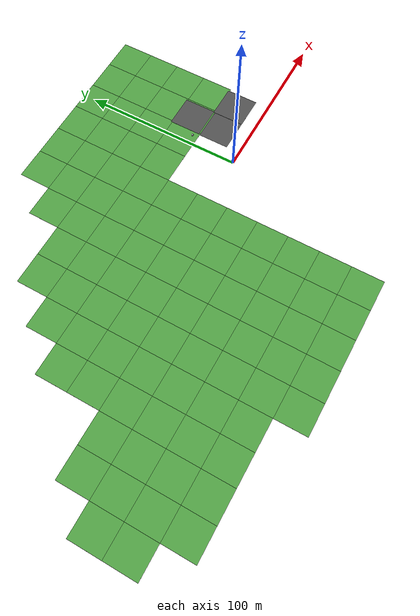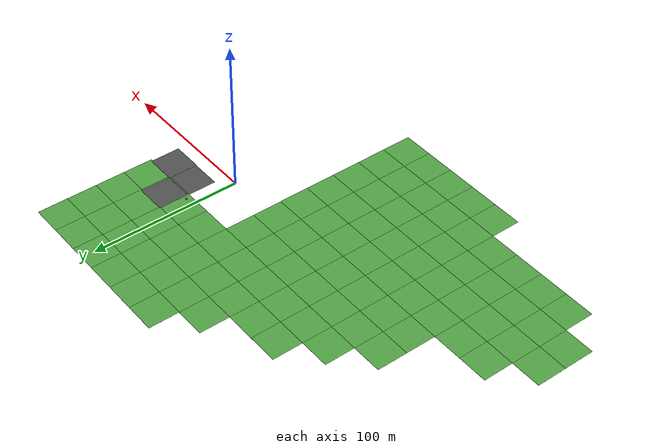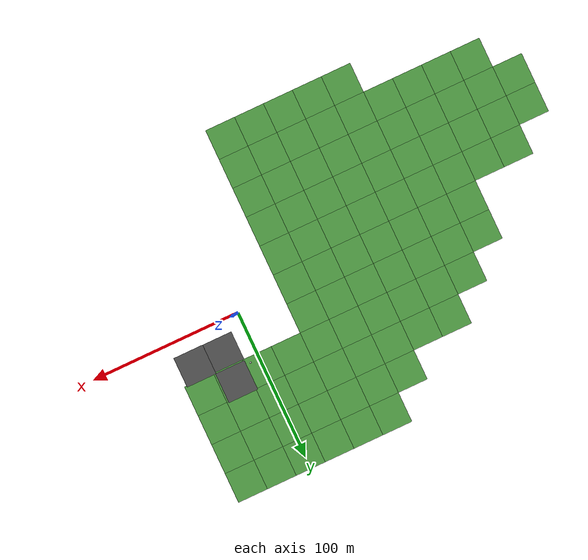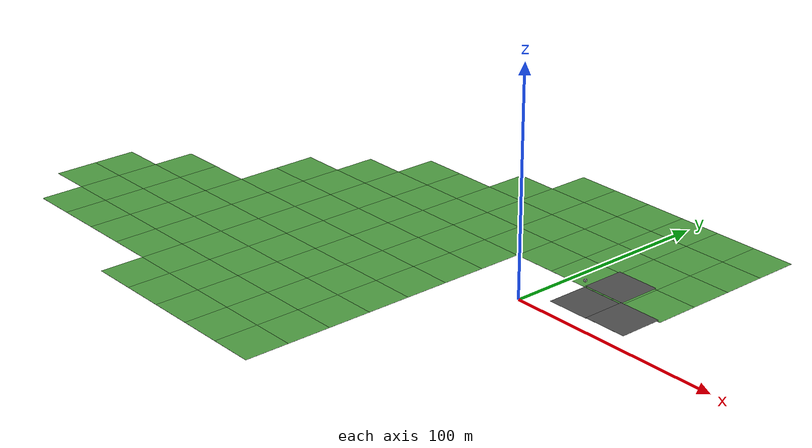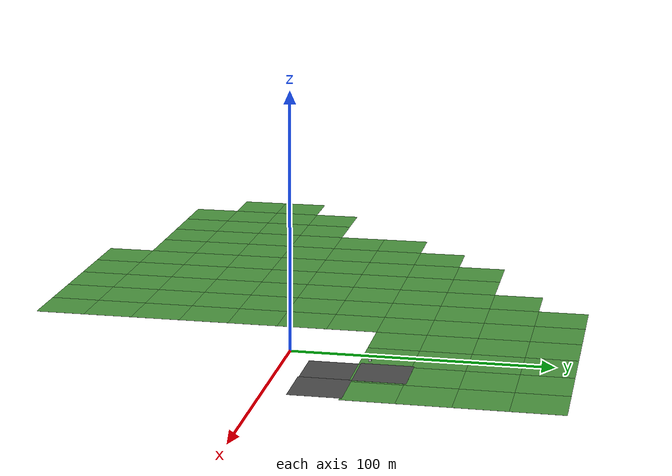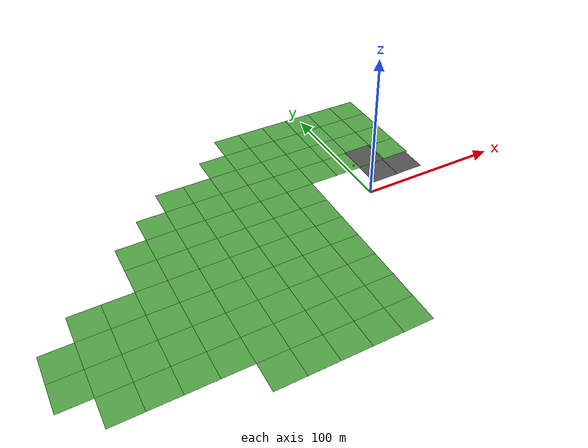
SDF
<sdf version="1.6">
 <world name="default">
  <model name="labrob_ground_7">
   <static>1</static>
   <link name="link">
    <collision name="collision">
     <geometry><plane><normal>0 0 1</normal><size>20 20</size></plane></geometry>
     <surface><friction><ode><mu>100</mu><mu2>50</mu2></ode></friction></surface>
    </collision>
    <visual name="visual">
     <cast_shadows>0</cast_shadows>
     <geometry><plane><normal>0 0 1</normal><size>20 20</size></plane></geometry>
     <material>
      <script>
       <uri>model://labrob_ground/materials/scripts/</uri>
       <uri>model://labrob_ground/materials/textures/</uri>
       <name>Labrob/AsphaltGround</name>
      </script>
     </material>
    </visual>
   </link>
   <pose>18.7361 18.9694 0 0 -0 0</pose>
  </model>
  <model name="labrob_ground_10">
   <static>1</static>
   <link name="link">
    <collision name="collision">
     <geometry><plane><normal>0 0 1</normal><size>20 20</size></plane></geometry>
     <surface><friction><ode><mu>100</mu><mu2>50</mu2></ode></friction></surface>
    </collision>
    <visual name="visual">
     <cast_shadows>0</cast_shadows>
     <geometry><plane><normal>0 0 1</normal><size>20 20</size></plane></geometry>
     <material>
      <script>
       <uri>model://labrob_ground/materials/scripts/</uri>
       <uri>model://labrob_ground/materials/textures/</uri>
       <name>Labrob/AsphaltGround</name>
      </script>
     </material>
    </visual>
   </link>
   <pose>18.9313 38.763 0 0 -0 0</pose>
  </model>
  <model name="labrob_ground_11">
   <static>1</static>
   <link name="link">
    <collision name="collision">
     <geometry><plane><normal>0 0 1</normal><size>20 20</size></plane></geometry>
     <surface><friction><ode><mu>100</mu><mu2>50</mu2></ode></friction></surface>
    </collision>
    <visual name="visual">
     <cast_shadows>0</cast_shadows>
     <geometry><plane><normal>0 0 1</normal><size>20 20</size></plane></geometry>
     <material>
      <script>
       <uri>model://labrob_ground/materials/scripts/</uri>
       <uri>model://labrob_ground/materials/textures/</uri>
       <name>Labrob/AsphaltGround</name>
      </script>
     </material>
    </visual>
   </link>
   <pose>38.4891 18.8271 0 0 -0 0</pose>
  </model>
  <model name="grass_plane_0">
   <static>1</static>
   <link name="link">
    <collision name="collision">
     <geometry><plane><normal>0 0 1</normal><size>500 500</size></plane></geometry>
     <surface><friction><ode><mu>0.5</mu><mu2>0.5</mu2></ode></friction></surface>
    </collision>
    <visual name="visual_0">
     <pose>-40 -40 0 0 -0 0</pose>
     <cast_shadows>0</cast_shadows>
     <geometry><plane><normal>0 0 1</normal><size>20 20</size></plane></geometry>
     <material>
      <script>
       <uri>model://grass_plane/materials/scripts</uri>
       <uri>model://grass_plane/materials/textures</uri>
       <name>vrc/grass</name>
      </script>
     </material>
    </visual>
    <visual name="visual_1">
     <pose>-20 -40 0 0 -0 0</pose>
     <cast_shadows>0</cast_shadows>
     <geometry><plane><normal>0 0 1</normal><size>20 20</size></plane></geometry>
     <material>
      <script>
       <uri>model://grass_plane/materials/scripts</uri>
       <uri>model://grass_plane/materials/textures</uri>
       <name>vrc/grass</name>
      </script>
     </material>
    </visual>
    <visual name="visual_2">
     <pose>0 -40 0 0 -0 0</pose>
     <cast_shadows>0</cast_shadows>
     <geometry><plane><normal>0 0 1</normal><size>20 20</size></plane></geometry>
     <material>
      <script>
       <uri>model://grass_plane/materials/scripts</uri>
       <uri>model://grass_plane/materials/textures</uri>
       <name>vrc/grass</name>
      </script>
     </material>
    </visual>
    <visual name="visual_3">
     <pose>20 -40 0 0 -0 0</pose>
     <cast_shadows>0</cast_shadows>
     <geometry><plane><normal>0 0 1</normal><size>20 20</size></plane></geometry>
     <material>
      <script>
       <uri>model://grass_plane/materials/scripts</uri>
       <uri>model://grass_plane/materials/textures</uri>
       <name>vrc/grass</name>
      </script>
     </material>
    </visual>
    <visual name="visual_4">
     <pose>40 -40 0 0 -0 0</pose>
     <cast_shadows>0</cast_shadows>
     <geometry><plane><normal>0 0 1</normal><size>20 20</size></plane></geometry>
     <material>
      <script>
       <uri>model://grass_plane/materials/scripts</uri>
       <uri>model://grass_plane/materials/textures</uri>
       <name>vrc/grass</name>
      </script>
     </material>
    </visual>
    <visual name="visual_5">
     <pose>60 -40 0 0 -0 0</pose>
     <cast_shadows>0</cast_shadows>
     <geometry><plane><normal>0 0 1</normal><size>20 20</size></plane></geometry>
     <material>
      <script>
       <uri>model://grass_plane/materials/scripts</uri>
       <uri>model://grass_plane/materials/textures</uri>
       <name>vrc/grass</name>
      </script>
     </material>
    </visual>
    <visual name="visual_6">
     <pose>-40 -20 0 0 -0 0</pose>
     <cast_shadows>0</cast_shadows>
     <geometry><plane><normal>0 0 1</normal><size>20 20</size></plane></geometry>
     <material>
      <script>
       <uri>model://grass_plane/materials/scripts</uri>
       <uri>model://grass_plane/materials/textures</uri>
       <name>vrc/grass</name>
      </script>
     </material>
    </visual>
    <visual name="visual_7">
     <pose>-20 -20 0 0 -0 0</pose>
     <cast_shadows>0</cast_shadows>
     <geometry><plane><normal>0 0 1</normal><size>20 20</size></plane></geometry>
     <material>
      <script>
       <uri>model://grass_plane/materials/scripts</uri>
       <uri>model://grass_plane/materials/textures</uri>
       <name>vrc/grass</name>
      </script>
     </material>
    </visual>
    <visual name="visual_8">
     <pose>0 -20 0 0 -0 0</pose>
     <cast_shadows>0</cast_shadows>
     <geometry><plane><normal>0 0 1</normal><size>20 20</size></plane></geometry>
     <material>
      <script>
       <uri>model://grass_plane/materials/scripts</uri>
       <uri>model://grass_plane/materials/textures</uri>
       <name>vrc/grass</name>
      </script>
     </material>
    </visual>
    <visual name="visual_9">
     <pose>20 -20 0 0 -0 0</pose>
     <cast_shadows>0</cast_shadows>
     <geometry><plane><normal>0 0 1</normal><size>20 20</size></plane></geometry>
     <material>
      <script>
       <uri>model://grass_plane/materials/scripts</uri>
       <uri>model://grass_plane/materials/textures</uri>
       <name>vrc/grass</name>
      </script>
     </material>
    </visual>
    <visual name="visual_10">
     <pose>40 -20 0 0 -0 0</pose>
     <cast_shadows>0</cast_shadows>
     <geometry><plane><normal>0 0 1</normal><size>20 20</size></plane></geometry>
     <material>
      <script>
       <uri>model://grass_plane/materials/scripts</uri>
       <uri>model://grass_plane/materials/textures</uri>
       <name>vrc/grass</name>
      </script>
     </material>
    </visual>
    <visual name="visual_11">
     <pose>60 -20 0 0 -0 0</pose>
     <cast_shadows>0</cast_shadows>
     <geometry><plane><normal>0 0 1</normal><size>20 20</size></plane></geometry>
     <material>
      <script>
       <uri>model://grass_plane/materials/scripts</uri>
       <uri>model://grass_plane/materials/textures</uri>
       <name>vrc/grass</name>
      </script>
     </material>
    </visual>
    <visual name="visual_12">
     <pose>80 -20 0 0 -0 0</pose>
     <cast_shadows>0</cast_shadows>
     <geometry><plane><normal>0 0 1</normal><size>20 20</size></plane></geometry>
     <material>
      <script>
       <uri>model://grass_plane/materials/scripts</uri>
       <uri>model://grass_plane/materials/textures</uri>
       <name>vrc/grass</name>
      </script>
     </material>
    </visual>
    <visual name="visual_13">
     <pose>-40 0 0 0 -0 0</pose>
     <cast_shadows>0</cast_shadows>
     <geometry><plane><normal>0 0 1</normal><size>20 20</size></plane></geometry>
     <material>
      <script>
       <uri>model://grass_plane/materials/scripts</uri>
       <uri>model://grass_plane/materials/textures</uri>
       <name>vrc/grass</name>
      </script>
     </material>
    </visual>
    <visual name="visual_14">
     <pose>-20 0 0 0 -0 0</pose>
     <cast_shadows>0</cast_shadows>
     <geometry><plane><normal>0 0 1</normal><size>20 20</size></plane></geometry>
     <material>
      <script>
       <uri>model://grass_plane/materials/scripts</uri>
       <uri>model://grass_plane/materials/textures</uri>
       <name>vrc/grass</name>
      </script>
     </material>
    </visual>
    <visual name="visual_15">
     <cast_shadows>0</cast_shadows>
     <geometry><plane><normal>0 0 1</normal><size>20 20</size></plane></geometry>
     <material>
      <script>
       <uri>model://grass_plane/materials/scripts</uri>
       <uri>model://grass_plane/materials/textures</uri>
       <name>vrc/grass</name>
      </script>
     </material>
    </visual>
    <visual name="visual_16">
     <pose>20 0 0 0 -0 0</pose>
     <cast_shadows>0</cast_shadows>
     <geometry><plane><normal>0 0 1</normal><size>20 20</size></plane></geometry>
     <material>
      <script>
       <uri>model://grass_plane/materials/scripts</uri>
       <uri>model://grass_plane/materials/textures</uri>
       <name>vrc/grass</name>
      </script>
     </material>
    </visual>
    <visual name="visual_17">
     <pose>40 0 0 0 -0 0</pose>
     <cast_shadows>0</cast_shadows>
     <geometry><plane><normal>0 0 1</normal><size>20 20</size></plane></geometry>
     <material>
      <script>
       <uri>model://grass_plane/materials/scripts</uri>
       <uri>model://grass_plane/materials/textures</uri>
       <name>vrc/grass</name>
      </script>
     </material>
    </visual>
    <visual name="visual_18">
     <pose>60 0 0 0 -0 0</pose>
     <cast_shadows>0</cast_shadows>
     <geometry><plane><normal>0 0 1</normal><size>20 20</size></plane></geometry>
     <material>
      <script>
       <uri>model://grass_plane/materials/scripts</uri>
       <uri>model://grass_plane/materials/textures</uri>
       <name>vrc/grass</name>
      </script>
     </material>
    </visual>
    <visual name="visual_19">
     <pose>80 0 0 0 -0 0</pose>
     <cast_shadows>0</cast_shadows>
     <geometry><plane><normal>0 0 1</normal><size>20 20</size></plane></geometry>
     <material>
      <script>
       <uri>model://grass_plane/materials/scripts</uri>
       <uri>model://grass_plane/materials/textures</uri>
       <name>vrc/grass</name>
      </script>
     </material>
    </visual>
    <visual name="visual_20">
     <pose>100 0 0 0 -0 0</pose>
     <cast_shadows>0</cast_shadows>
     <geometry><plane><normal>0 0 1</normal><size>20 20</size></plane></geometry>
     <material>
      <script>
       <uri>model://grass_plane/materials/scripts</uri>
       <uri>model://grass_plane/materials/textures</uri>
       <name>vrc/grass</name>
      </script>
     </material>
    </visual>
    <visual name="visual_21">
     <pose>120 0 0 0 -0 0</pose>
     <cast_shadows>0</cast_shadows>
     <geometry><plane><normal>0 0 1</normal><size>20 20</size></plane></geometry>
     <material>
      <script>
       <uri>model://grass_plane/materials/scripts</uri>
       <uri>model://grass_plane/materials/textures</uri>
       <name>vrc/grass</name>
      </script>
     </material>
    </visual>
    <visual name="visual_22">
     <pose>-40 20 0 0 -0 0</pose>
     <cast_shadows>0</cast_shadows>
     <geometry><plane><normal>0 0 1</normal><size>20 20</size></plane></geometry>
     <material>
      <script>
       <uri>model://grass_plane/materials/scripts</uri>
       <uri>model://grass_plane/materials/textures</uri>
       <name>vrc/grass</name>
      </script>
     </material>
    </visual>
    <visual name="visual_23">
     <pose>-20 20 0 0 -0 0</pose>
     <cast_shadows>0</cast_shadows>
     <geometry><plane><normal>0 0 1</normal><size>20 20</size></plane></geometry>
     <material>
      <script>
       <uri>model://grass_plane/materials/scripts</uri>
       <uri>model://grass_plane/materials/textures</uri>
       <name>vrc/grass</name>
      </script>
     </material>
    </visual>
    <visual name="visual_24">
     <pose>0 20 0 0 -0 0</pose>
     <cast_shadows>0</cast_shadows>
     <geometry><plane><normal>0 0 1</normal><size>20 20</size></plane></geometry>
     <material>
      <script>
       <uri>model://grass_plane/materials/scripts</uri>
       <uri>model://grass_plane/materials/textures</uri>
       <name>vrc/grass</name>
      </script>
     </material>
    </visual>
    <visual name="visual_25">
     <pose>20 20 0 0 -0 0</pose>
     <cast_shadows>0</cast_shadows>
     <geometry><plane><normal>0 0 1</normal><size>20 20</size></plane></geometry>
     <material>
      <script>
       <uri>model://grass_plane/materials/scripts</uri>
       <uri>model://grass_plane/materials/textures</uri>
       <name>vrc/grass</name>
      </script>
     </material>
    </visual>
    <visual name="visual_26">
     <pose>40 20 0 0 -0 0</pose>
     <cast_shadows>0</cast_shadows>
     <geometry><plane><normal>0 0 1</normal><size>20 20</size></plane></geometry>
     <material>
      <script>
       <uri>model://grass_plane/materials/scripts</uri>
       <uri>model://grass_plane/materials/textures</uri>
       <name>vrc/grass</name>
      </script>
     </material>
    </visual>
    <visual name="visual_27">
     <pose>60 20 0 0 -0 0</pose>
     <cast_shadows>0</cast_shadows>
     <geometry><plane><normal>0 0 1</normal><size>20 20</size></plane></geometry>
     <material>
      <script>
       <uri>model://grass_plane/materials/scripts</uri>
       <uri>model://grass_plane/materials/textures</uri>
       <name>vrc/grass</name>
      </script>
     </material>
    </visual>
    <visual name="visual_28">
     <pose>80 20 0 0 -0 0</pose>
     <cast_shadows>0</cast_shadows>
     <geometry><plane><normal>0 0 1</normal><size>20 20</size></plane></geometry>
     <material>
      <script>
       <uri>model://grass_plane/materials/scripts</uri>
       <uri>model://grass_plane/materials/textures</uri>
       <name>vrc/grass</name>
      </script>
     </material>
    </visual>
    <visual name="visual_29">
     <pose>100 20 0 0 -0 0</pose>
     <cast_shadows>0</cast_shadows>
     <geometry><plane><normal>0 0 1</normal><size>20 20</size></plane></geometry>
     <material>
      <script>
       <uri>model://grass_plane/materials/scripts</uri>
       <uri>model://grass_plane/materials/textures</uri>
       <name>vrc/grass</name>
      </script>
     </material>
    </visual>
    <visual name="visual_30">
     <pose>120 20 0 0 -0 0</pose>
     <cast_shadows>0</cast_shadows>
     <geometry><plane><normal>0 0 1</normal><size>20 20</size></plane></geometry>
     <material>
      <script>
       <uri>model://grass_plane/materials/scripts</uri>
       <uri>model://grass_plane/materials/textures</uri>
       <name>vrc/grass</name>
      </script>
     </material>
    </visual>
    <visual name="visual_31">
     <pose>140 20 0 0 -0 0</pose>
     <cast_shadows>0</cast_shadows>
     <geometry><plane><normal>0 0 1</normal><size>20 20</size></plane></geometry>
     <material>
      <script>
       <uri>model://grass_plane/materials/scripts</uri>
       <uri>model://grass_plane/materials/textures</uri>
       <name>vrc/grass</name>
      </script>
     </material>
    </visual>
    <visual name="visual_32">
     <pose>40 40 0 0 -0 0</pose>
     <cast_shadows>0</cast_shadows>
     <geometry><plane><normal>0 0 1</normal><size>20 20</size></plane></geometry>
     <material>
      <script>
       <uri>model://grass_plane/materials/scripts</uri>
       <uri>model://grass_plane/materials/textures</uri>
       <name>vrc/grass</name>
      </script>
     </material>
    </visual>
    <visual name="visual_33">
     <pose>60 40 0 0 -0 0</pose>
     <cast_shadows>0</cast_shadows>
     <geometry><plane><normal>0 0 1</normal><size>20 20</size></plane></geometry>
     <material>
      <script>
       <uri>model://grass_plane/materials/scripts</uri>
       <uri>model://grass_plane/materials/textures</uri>
       <name>vrc/grass</name>
      </script>
     </material>
    </visual>
    <visual name="visual_34">
     <pose>80 40 0 0 -0 0</pose>
     <cast_shadows>0</cast_shadows>
     <geometry><plane><normal>0 0 1</normal><size>20 20</size></plane></geometry>
     <material>
      <script>
       <uri>model://grass_plane/materials/scripts</uri>
       <uri>model://grass_plane/materials/textures</uri>
       <name>vrc/grass</name>
      </script>
     </material>
    </visual>
    <visual name="visual_35">
     <pose>100 40 0 0 -0 0</pose>
     <cast_shadows>0</cast_shadows>
     <geometry><plane><normal>0 0 1</normal><size>20 20</size></plane></geometry>
     <material>
      <script>
       <uri>model://grass_plane/materials/scripts</uri>
       <uri>model://grass_plane/materials/textures</uri>
       <name>vrc/grass</name>
      </script>
     </material>
    </visual>
    <visual name="visual_36">
     <pose>120 40 0 0 -0 0</pose>
     <cast_shadows>0</cast_shadows>
     <geometry><plane><normal>0 0 1</normal><size>20 20</size></plane></geometry>
     <material>
      <script>
       <uri>model://grass_plane/materials/scripts</uri>
       <uri>model://grass_plane/materials/textures</uri>
       <name>vrc/grass</name>
      </script>
     </material>
    </visual>
    <visual name="visual_37">
     <pose>140 40 0 0 -0 0</pose>
     <cast_shadows>0</cast_shadows>
     <geometry><plane><normal>0 0 1</normal><size>20 20</size></plane></geometry>
     <material>
      <script>
       <uri>model://grass_plane/materials/scripts</uri>
       <uri>model://grass_plane/materials/textures</uri>
       <name>vrc/grass</name>
      </script>
     </material>
    </visual>
    <visual name="visual_38">
     <pose>160 40 0 0 -0 0</pose>
     <cast_shadows>0</cast_shadows>
     <geometry><plane><normal>0 0 1</normal><size>20 20</size></plane></geometry>
     <material>
      <script>
       <uri>model://grass_plane/materials/scripts</uri>
       <uri>model://grass_plane/materials/textures</uri>
       <name>vrc/grass</name>
      </script>
     </material>
    </visual>
    <visual name="visual_39">
     <pose>40 60 0 0 -0 0</pose>
     <cast_shadows>0</cast_shadows>
     <geometry><plane><normal>0 0 1</normal><size>20 20</size></plane></geometry>
     <material>
      <script>
       <uri>model://grass_plane/materials/scripts</uri>
       <uri>model://grass_plane/materials/textures</uri>
       <name>vrc/grass</name>
      </script>
     </material>
    </visual>
    <visual name="visual_40">
     <pose>60 60 0 0 -0 0</pose>
     <cast_shadows>0</cast_shadows>
     <geometry><plane><normal>0 0 1</normal><size>20 20</size></plane></geometry>
     <material>
      <script>
       <uri>model://grass_plane/materials/scripts</uri>
       <uri>model://grass_plane/materials/textures</uri>
       <name>vrc/grass</name>
      </script>
     </material>
    </visual>
    <visual name="visual_41">
     <pose>80 60 0 0 -0 0</pose>
     <cast_shadows>0</cast_shadows>
     <geometry><plane><normal>0 0 1</normal><size>20 20</size></plane></geometry>
     <material>
      <script>
       <uri>model://grass_plane/materials/scripts</uri>
       <uri>model://grass_plane/materials/textures</uri>
       <name>vrc/grass</name>
      </script>
     </material>
    </visual>
    <visual name="visual_42">
     <pose>100 60 0 0 -0 0</pose>
     <cast_shadows>0</cast_shadows>
     <geometry><plane><normal>0 0 1</normal><size>20 20</size></plane></geometry>
     <material>
      <script>
       <uri>model://grass_plane/materials/scripts</uri>
       <uri>model://grass_plane/materials/textures</uri>
       <name>vrc/grass</name>
      </script>
     </material>
    </visual>
    <visual name="visual_43">
     <pose>120 60 0 0 -0 0</pose>
     <cast_shadows>0</cast_shadows>
     <geometry><plane><normal>0 0 1</normal><size>20 20</size></plane></geometry>
     <material>
      <script>
       <uri>model://grass_plane/materials/scripts</uri>
       <uri>model://grass_plane/materials/textures</uri>
       <name>vrc/grass</name>
      </script>
     </material>
    </visual>
    <visual name="visual_44">
     <pose>140 60 0 0 -0 0</pose>
     <cast_shadows>0</cast_shadows>
     <geometry><plane><normal>0 0 1</normal><size>20 20</size></plane></geometry>
     <material>
      <script>
       <uri>model://grass_plane/materials/scripts</uri>
       <uri>model://grass_plane/materials/textures</uri>
       <name>vrc/grass</name>
      </script>
     </material>
    </visual>
    <visual name="visual_45">
     <pose>160 60 0 0 -0 0</pose>
     <cast_shadows>0</cast_shadows>
     <geometry><plane><normal>0 0 1</normal><size>20 20</size></plane></geometry>
     <material>
      <script>
       <uri>model://grass_plane/materials/scripts</uri>
       <uri>model://grass_plane/materials/textures</uri>
       <name>vrc/grass</name>
      </script>
     </material>
    </visual>
    <visual name="visual_46">
     <pose>40 80 0 0 -0 0</pose>
     <cast_shadows>0</cast_shadows>
     <geometry><plane><normal>0 0 1</normal><size>20 20</size></plane></geometry>
     <material>
      <script>
       <uri>model://grass_plane/materials/scripts</uri>
       <uri>model://grass_plane/materials/textures</uri>
       <name>vrc/grass</name>
      </script>
     </material>
    </visual>
    <visual name="visual_47">
     <pose>60 80 0 0 -0 0</pose>
     <cast_shadows>0</cast_shadows>
     <geometry><plane><normal>0 0 1</normal><size>20 20</size></plane></geometry>
     <material>
      <script>
       <uri>model://grass_plane/materials/scripts</uri>
       <uri>model://grass_plane/materials/textures</uri>
       <name>vrc/grass</name>
      </script>
     </material>
    </visual>
    <visual name="visual_48">
     <pose>80 80 0 0 -0 0</pose>
     <cast_shadows>0</cast_shadows>
     <geometry><plane><normal>0 0 1</normal><size>20 20</size></plane></geometry>
     <material>
      <script>
       <uri>model://grass_plane/materials/scripts</uri>
       <uri>model://grass_plane/materials/textures</uri>
       <name>vrc/grass</name>
      </script>
     </material>
    </visual>
    <visual name="visual_49">
     <pose>100 80 0 0 -0 0</pose>
     <cast_shadows>0</cast_shadows>
     <geometry><plane><normal>0 0 1</normal><size>20 20</size></plane></geometry>
     <material>
      <script>
       <uri>model://grass_plane/materials/scripts</uri>
       <uri>model://grass_plane/materials/textures</uri>
       <name>vrc/grass</name>
      </script>
     </material>
    </visual>
    <visual name="visual_50">
     <pose>120 80 0 0 -0 0</pose>
     <cast_shadows>0</cast_shadows>
     <geometry><plane><normal>0 0 1</normal><size>20 20</size></plane></geometry>
     <material>
      <script>
       <uri>model://grass_plane/materials/scripts</uri>
       <uri>model://grass_plane/materials/textures</uri>
       <name>vrc/grass</name>
      </script>
     </material>
    </visual>
    <visual name="visual_51">
     <pose>140 80 0 0 -0 0</pose>
     <cast_shadows>0</cast_shadows>
     <geometry><plane><normal>0 0 1</normal><size>20 20</size></plane></geometry>
     <material>
      <script>
       <uri>model://grass_plane/materials/scripts</uri>
       <uri>model://grass_plane/materials/textures</uri>
       <name>vrc/grass</name>
      </script>
     </material>
    </visual>
    <visual name="visual_52">
     <pose>160 80 0 0 -0 0</pose>
     <cast_shadows>0</cast_shadows>
     <geometry><plane><normal>0 0 1</normal><size>20 20</size></plane></geometry>
     <material>
      <script>
       <uri>model://grass_plane/materials/scripts</uri>
       <uri>model://grass_plane/materials/textures</uri>
       <name>vrc/grass</name>
      </script>
     </material>
    </visual>
    <visual name="visual_53">
     <pose>180 80 0 0 -0 0</pose>
     <cast_shadows>0</cast_shadows>
     <geometry><plane><normal>0 0 1</normal><size>20 20</size></plane></geometry>
     <material>
      <script>
       <uri>model://grass_plane/materials/scripts</uri>
       <uri>model://grass_plane/materials/textures</uri>
       <name>vrc/grass</name>
      </script>
     </material>
    </visual>
    <visual name="visual_54">
     <pose>200 80 0 0 -0 0</pose>
     <cast_shadows>0</cast_shadows>
     <geometry><plane><normal>0 0 1</normal><size>20 20</size></plane></geometry>
     <material>
      <script>
       <uri>model://grass_plane/materials/scripts</uri>
       <uri>model://grass_plane/materials/textures</uri>
       <name>vrc/grass</name>
      </script>
     </material>
    </visual>
    <visual name="visual_55">
     <pose>40 100 0 0 -0 0</pose>
     <cast_shadows>0</cast_shadows>
     <geometry><plane><normal>0 0 1</normal><size>20 20</size></plane></geometry>
     <material>
      <script>
       <uri>model://grass_plane/materials/scripts</uri>
       <uri>model://grass_plane/materials/textures</uri>
       <name>vrc/grass</name>
      </script>
     </material>
    </visual>
    <visual name="visual_56">
     <pose>60 100 0 0 -0 0</pose>
     <cast_shadows>0</cast_shadows>
     <geometry><plane><normal>0 0 1</normal><size>20 20</size></plane></geometry>
     <material>
      <script>
       <uri>model://grass_plane/materials/scripts</uri>
       <uri>model://grass_plane/materials/textures</uri>
       <name>vrc/grass</name>
      </script>
     </material>
    </visual>
    <visual name="visual_57">
     <pose>80 100 0 0 -0 0</pose>
     <cast_shadows>0</cast_shadows>
     <geometry><plane><normal>0 0 1</normal><size>20 20</size></plane></geometry>
     <material>
      <script>
       <uri>model://grass_plane/materials/scripts</uri>
       <uri>model://grass_plane/materials/textures</uri>
       <name>vrc/grass</name>
      </script>
     </material>
    </visual>
    <visual name="visual_58">
     <pose>100 100 0 0 -0 0</pose>
     <cast_shadows>0</cast_shadows>
     <geometry><plane><normal>0 0 1</normal><size>20 20</size></plane></geometry>
     <material>
      <script>
       <uri>model://grass_plane/materials/scripts</uri>
       <uri>model://grass_plane/materials/textures</uri>
       <name>vrc/grass</name>
      </script>
     </material>
    </visual>
    <visual name="visual_59">
     <pose>120 100 0 0 -0 0</pose>
     <cast_shadows>0</cast_shadows>
     <geometry><plane><normal>0 0 1</normal><size>20 20</size></plane></geometry>
     <material>
      <script>
       <uri>model://grass_plane/materials/scripts</uri>
       <uri>model://grass_plane/materials/textures</uri>
       <name>vrc/grass</name>
      </script>
     </material>
    </visual>
    <visual name="visual_60">
     <pose>140 100 0 0 -0 0</pose>
     <cast_shadows>0</cast_shadows>
     <geometry><plane><normal>0 0 1</normal><size>20 20</size></plane></geometry>
     <material>
      <script>
       <uri>model://grass_plane/materials/scripts</uri>
       <uri>model://grass_plane/materials/textures</uri>
       <name>vrc/grass</name>
      </script>
     </material>
    </visual>
    <visual name="visual_61">
     <pose>160 100 0 0 -0 0</pose>
     <cast_shadows>0</cast_shadows>
     <geometry><plane><normal>0 0 1</normal><size>20 20</size></plane></geometry>
     <material>
      <script>
       <uri>model://grass_plane/materials/scripts</uri>
       <uri>model://grass_plane/materials/textures</uri>
       <name>vrc/grass</name>
      </script>
     </material>
    </visual>
    <visual name="visual_62">
     <pose>180 100 0 0 -0 0</pose>
     <cast_shadows>0</cast_shadows>
     <geometry><plane><normal>0 0 1</normal><size>20 20</size></plane></geometry>
     <material>
      <script>
       <uri>model://grass_plane/materials/scripts</uri>
       <uri>model://grass_plane/materials/textures</uri>
       <name>vrc/grass</name>
      </script>
     </material>
    </visual>
    <visual name="visual_63">
     <pose>200 100 0 0 -0 0</pose>
     <cast_shadows>0</cast_shadows>
     <geometry><plane><normal>0 0 1</normal><size>20 20</size></plane></geometry>
     <material>
      <script>
       <uri>model://grass_plane/materials/scripts</uri>
       <uri>model://grass_plane/materials/textures</uri>
       <name>vrc/grass</name>
      </script>
     </material>
    </visual>
    <visual name="visual_63a">
     <pose>220 100 0 0 -0 0</pose>
     <cast_shadows>0</cast_shadows>
     <geometry><plane><normal>0 0 1</normal><size>20 20</size></plane></geometry>
     <material>
      <script>
       <uri>model://grass_plane/materials/scripts</uri>
       <uri>model://grass_plane/materials/textures</uri>
       <name>vrc/grass</name>
      </script>
     </material>
    </visual>
    <visual name="visual_64">
     <pose>40 120 0 0 -0 0</pose>
     <cast_shadows>0</cast_shadows>
     <geometry><plane><normal>0 0 1</normal><size>20 20</size></plane></geometry>
     <material>
      <script>
       <uri>model://grass_plane/materials/scripts</uri>
       <uri>model://grass_plane/materials/textures</uri>
       <name>vrc/grass</name>
      </script>
     </material>
    </visual>
    <visual name="visual_65">
     <pose>60 120 0 0 -0 0</pose>
     <cast_shadows>0</cast_shadows>
     <geometry><plane><normal>0 0 1</normal><size>20 20</size></plane></geometry>
     <material>
      <script>
       <uri>model://grass_plane/materials/scripts</uri>
       <uri>model://grass_plane/materials/textures</uri>
       <name>vrc/grass</name>
      </script>
     </material>
    </visual>
    <visual name="visual_66">
     <pose>80 120 0 0 -0 0</pose>
     <cast_shadows>0</cast_shadows>
     <geometry><plane><normal>0 0 1</normal><size>20 20</size></plane></geometry>
     <material>
      <script>
       <uri>model://grass_plane/materials/scripts</uri>
       <uri>model://grass_plane/materials/textures</uri>
       <name>vrc/grass</name>
      </script>
     </material>
    </visual>
    <visual name="visual_67">
     <pose>100 120 0 0 -0 0</pose>
     <cast_shadows>0</cast_shadows>
     <geometry><plane><normal>0 0 1</normal><size>20 20</size></plane></geometry>
     <material>
      <script>
       <uri>model://grass_plane/materials/scripts</uri>
       <uri>model://grass_plane/materials/textures</uri>
       <name>vrc/grass</name>
      </script>
     </material>
    </visual>
    <visual name="visual_68">
     <pose>120 120 0 0 -0 0</pose>
     <cast_shadows>0</cast_shadows>
     <geometry><plane><normal>0 0 1</normal><size>20 20</size></plane></geometry>
     <material>
      <script>
       <uri>model://grass_plane/materials/scripts</uri>
       <uri>model://grass_plane/materials/textures</uri>
       <name>vrc/grass</name>
      </script>
     </material>
    </visual>
    <visual name="visual_69">
     <pose>140 120 0 0 -0 0</pose>
     <cast_shadows>0</cast_shadows>
     <geometry><plane><normal>0 0 1</normal><size>20 20</size></plane></geometry>
     <material>
      <script>
       <uri>model://grass_plane/materials/scripts</uri>
       <uri>model://grass_plane/materials/textures</uri>
       <name>vrc/grass</name>
      </script>
     </material>
    </visual>
    <visual name="visual_70">
     <pose>160 120 0 0 -0 0</pose>
     <cast_shadows>0</cast_shadows>
     <geometry><plane><normal>0 0 1</normal><size>20 20</size></plane></geometry>
     <material>
      <script>
       <uri>model://grass_plane/materials/scripts</uri>
       <uri>model://grass_plane/materials/textures</uri>
       <name>vrc/grass</name>
      </script>
     </material>
    </visual>
    <visual name="visual_71">
     <pose>180 120 0 0 -0 0</pose>
     <cast_shadows>0</cast_shadows>
     <geometry><plane><normal>0 0 1</normal><size>20 20</size></plane></geometry>
     <material>
      <script>
       <uri>model://grass_plane/materials/scripts</uri>
       <uri>model://grass_plane/materials/textures</uri>
       <name>vrc/grass</name>
      </script>
     </material>
    </visual>
    <visual name="visual_72">
     <pose>200 120 0 0 -0 0</pose>
     <cast_shadows>0</cast_shadows>
     <geometry><plane><normal>0 0 1</normal><size>20 20</size></plane></geometry>
     <material>
      <script>
       <uri>model://grass_plane/materials/scripts</uri>
       <uri>model://grass_plane/materials/textures</uri>
       <name>vrc/grass</name>
      </script>
     </material>
    </visual>
    <visual name="visual_72a">
     <pose>220 120 0 0 -0 0</pose>
     <cast_shadows>0</cast_shadows>
     <geometry><plane><normal>0 0 1</normal><size>20 20</size></plane></geometry>
     <material>
      <script>
       <uri>model://grass_plane/materials/scripts</uri>
       <uri>model://grass_plane/materials/textures</uri>
       <name>vrc/grass</name>
      </script>
     </material>
    </visual>
    <visual name="visual_73">
     <pose>40 140 0 0 -0 0</pose>
     <cast_shadows>0</cast_shadows>
     <geometry><plane><normal>0 0 1</normal><size>20 20</size></plane></geometry>
     <material>
      <script>
       <uri>model://grass_plane/materials/scripts</uri>
       <uri>model://grass_plane/materials/textures</uri>
       <name>vrc/grass</name>
      </script>
     </material>
    </visual>
    <visual name="visual_74">
     <pose>60 140 0 0 -0 0</pose>
     <cast_shadows>0</cast_shadows>
     <geometry><plane><normal>0 0 1</normal><size>20 20</size></plane></geometry>
     <material>
      <script>
       <uri>model://grass_plane/materials/scripts</uri>
       <uri>model://grass_plane/materials/textures</uri>
       <name>vrc/grass</name>
      </script>
     </material>
    </visual>
    <visual name="visual_75">
     <pose>80 140 0 0 -0 0</pose>
     <cast_shadows>0</cast_shadows>
     <geometry><plane><normal>0 0 1</normal><size>20 20</size></plane></geometry>
     <material>
      <script>
       <uri>model://grass_plane/materials/scripts</uri>
       <uri>model://grass_plane/materials/textures</uri>
       <name>vrc/grass</name>
      </script>
     </material>
    </visual>
    <visual name="visual_76">
     <pose>100 140 0 0 -0 0</pose>
     <cast_shadows>0</cast_shadows>
     <geometry><plane><normal>0 0 1</normal><size>20 20</size></plane></geometry>
     <material>
      <script>
       <uri>model://grass_plane/materials/scripts</uri>
       <uri>model://grass_plane/materials/textures</uri>
       <name>vrc/grass</name>
      </script>
     </material>
    </visual>
    <visual name="visual_77">
     <pose>120 140 0 0 -0 0</pose>
     <cast_shadows>0</cast_shadows>
     <geometry><plane><normal>0 0 1</normal><size>20 20</size></plane></geometry>
     <material>
      <script>
       <uri>model://grass_plane/materials/scripts</uri>
       <uri>model://grass_plane/materials/textures</uri>
       <name>vrc/grass</name>
      </script>
     </material>
    </visual>
    <visual name="visual_78">
     <pose>140 140 0 0 -0 0</pose>
     <cast_shadows>0</cast_shadows>
     <geometry><plane><normal>0 0 1</normal><size>20 20</size></plane></geometry>
     <material>
      <script>
       <uri>model://grass_plane/materials/scripts</uri>
       <uri>model://grass_plane/materials/textures</uri>
       <name>vrc/grass</name>
      </script>
     </material>
    </visual>
    <visual name="visual_79">
     <pose>160 140 0 0 -0 0</pose>
     <cast_shadows>0</cast_shadows>
     <geometry><plane><normal>0 0 1</normal><size>20 20</size></plane></geometry>
     <material>
      <script>
       <uri>model://grass_plane/materials/scripts</uri>
       <uri>model://grass_plane/materials/textures</uri>
       <name>vrc/grass</name>
      </script>
     </material>
    </visual>
    <visual name="visual_80">
     <pose>180 140 0 0 -0 0</pose>
     <cast_shadows>0</cast_shadows>
     <geometry><plane><normal>0 0 1</normal><size>20 20</size></plane></geometry>
     <material>
      <script>
       <uri>model://grass_plane/materials/scripts</uri>
       <uri>model://grass_plane/materials/textures</uri>
       <name>vrc/grass</name>
      </script>
     </material>
    </visual>
    <visual name="visual_81">
     <pose>200 140 0 0 -0 0</pose>
     <cast_shadows>0</cast_shadows>
     <geometry><plane><normal>0 0 1</normal><size>20 20</size></plane></geometry>
     <material>
      <script>
       <uri>model://grass_plane/materials/scripts</uri>
       <uri>model://grass_plane/materials/textures</uri>
       <name>vrc/grass</name>
      </script>
     </material>
    </visual>
    <visual name="visual_82">
     <pose>40 160 0 0 -0 0</pose>
     <cast_shadows>0</cast_shadows>
     <geometry><plane><normal>0 0 1</normal><size>20 20</size></plane></geometry>
     <material>
      <script>
       <uri>model://grass_plane/materials/scripts</uri>
       <uri>model://grass_plane/materials/textures</uri>
       <name>vrc/grass</name>
      </script>
     </material>
    </visual>
    <visual name="visual_83">
     <pose>60 160 0 0 -0 0</pose>
     <cast_shadows>0</cast_shadows>
     <geometry><plane><normal>0 0 1</normal><size>20 20</size></plane></geometry>
     <material>
      <script>
       <uri>model://grass_plane/materials/scripts</uri>
       <uri>model://grass_plane/materials/textures</uri>
       <name>vrc/grass</name>
      </script>
     </material>
    </visual>
    <visual name="visual_84">
     <pose>80 160 0 0 -0 0</pose>
     <cast_shadows>0</cast_shadows>
     <geometry><plane><normal>0 0 1</normal><size>20 20</size></plane></geometry>
     <material>
      <script>
       <uri>model://grass_plane/materials/scripts</uri>
       <uri>model://grass_plane/materials/textures</uri>
       <name>vrc/grass</name>
      </script>
     </material>
    </visual>
    <visual name="visual_85">
     <pose>100 160 0 0 -0 0</pose>
     <cast_shadows>0</cast_shadows>
     <geometry><plane><normal>0 0 1</normal><size>20 20</size></plane></geometry>
     <material>
      <script>
       <uri>model://grass_plane/materials/scripts</uri>
       <uri>model://grass_plane/materials/textures</uri>
       <name>vrc/grass</name>
      </script>
     </material>
    </visual>
    <visual name="visual_86">
     <pose>120 160 0 0 -0 0</pose>
     <cast_shadows>0</cast_shadows>
     <geometry><plane><normal>0 0 1</normal><size>20 20</size></plane></geometry>
     <material>
      <script>
       <uri>model://grass_plane/materials/scripts</uri>
       <uri>model://grass_plane/materials/textures</uri>
       <name>vrc/grass</name>
      </script>
     </material>
    </visual>
   </link>
   <pose>0 58 -0.1 0 -0 3.14</pose>
  </model>
  <model name="box_1">
   <pose>5.92949 31.654 0.499993 0 -2e-06 -0.000531</pose>
   <link name="link">
    <collision name="collision"><geometry><box><size>1 1 1</size></box></geometry></collision>
    <visual name="visual"><geometry><box><size>1 1 1</size></box></geometry></visual>
    <inertial>
     <inertia><ixx>1</ixx><ixy>0</ixy><ixz>0</ixz><iyy>1</iyy><iyz>0</iyz><izz>1</izz></inertia>
     <mass>1</mass>
    </inertial>
   </link>
   <plugin name="drone_plugin" filename="libdrone_plugin.so"/>
  </model>
  <model name="sphere_green_14_clone_50">
   <link name="chassis">
    <pose>0 0 0.25 0 -0 0</pose>
    <inertial>
     <mass>1</mass>
     <inertia><ixx>1</ixx><ixy>0</ixy><ixz>0</ixz><iyy>1</iyy><iyz>0</iyz><izz>1</izz></inertia>
    </inertial>
    <visual name="visual">
     <geometry><sphere><radius>0.07</radius></sphere></geometry>
     <material>
      <ambient>1 1 0 1</ambient>
      <diffuse>1 1 0 1</diffuse>
      <specular>0.1 0.1 0.1 1</specular>
      <emissive>1 1 0 1</emissive>
      <shader type="pixel"><normal_map>__default__</normal_map></shader>
      <script><name>ModelPreview_1::chassis::visual_MATERIAL_</name><uri>__default__</uri></script>
     </material>
    </visual>
    <collision name="collision">
     <geometry><sphere><radius>0.07</radius></sphere></geometry>
     <surface>
      <friction>
       <ode><mu>1</mu><mu2>1</mu2><fdir1>0 0 0</fdir1><slip1>0</slip1><slip2>0</slip2></ode>
       <torsional>
        <coefficient>1</coefficient>
        <patch_radius>0</patch_radius>
        <surface_radius>0</surface_radius>
        <use_patch_radius>1</use_patch_radius>
        <ode><slip>0</slip></ode>
       </torsional>
      </friction>
      <bounce><restitution_coefficient>0</restitution_coefficient><threshold>1e+06</threshold></bounce>
      <contact>
       <collide_without_contact>0</collide_without_contact>
       <collide_without_contact_bitmask>1</collide_without_contact_bitmask>
       <collide_bitmask>1</collide_bitmask>
       <ode>
        <soft_cfm>0</soft_cfm>
        <soft_erp>0.2</soft_erp>
        <kp>1e+13</kp>
        <kd>1</kd>
        <max_vel>0.01</max_vel>
        <min_depth>0</min_depth>
       </ode>
       <bullet>
        <split_impulse>1</split_impulse>
        <split_impulse_penetration_threshold>-0.01</split_impulse_penetration_threshold>
        <soft_cfm>0</soft_cfm>
        <soft_erp>0.2</soft_erp>
        <kp>1e+13</kp>
        <kd>1</kd>
       </bullet>
      </contact>
     </surface>
    </collision>
   </link>
   <static>1</static>
   <pose>1.6466 18.9051 0 0 -0 0</pose>
  </model>
 </world>
</sdf>
